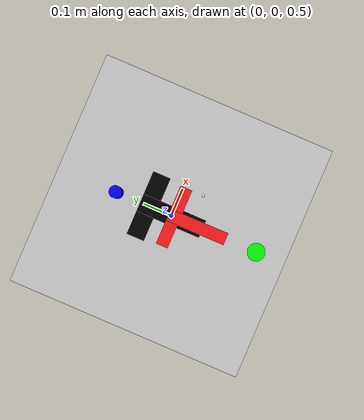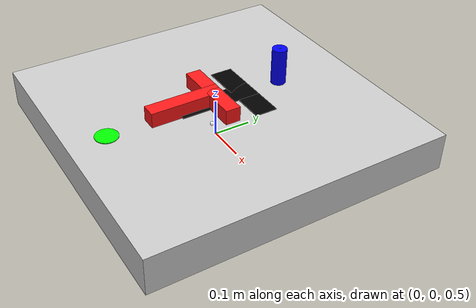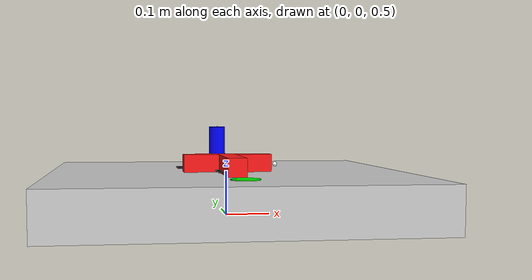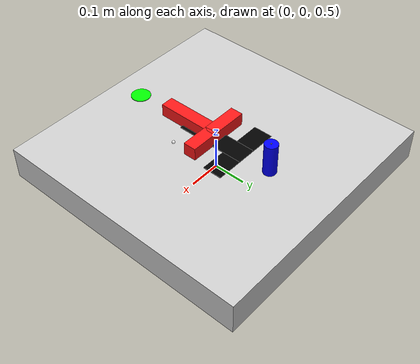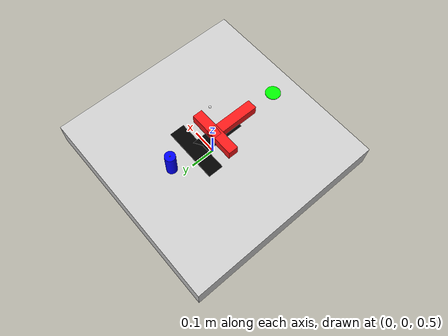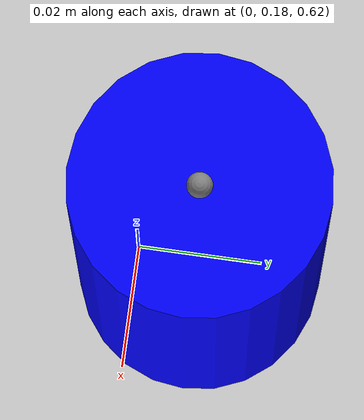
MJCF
<?xml version="1.0" ?>
<mujoco>
  <compiler angle="radian" autolimits="true"/>
  <visual>
    <headlight diffuse="0.6 0.6 0.6" ambient="0.3 0.3 0.3" specular="0 0 0"/>
    <rgba haze="0.15 0.25 0.35 1"/>
    <global azimuth="150" elevation="-20" offwidth="1280" offheight="1024"/>
  </visual>
  <asset>
    <texture type="skybox" builtin="gradient" rgb1="0.9 0.7 0.9" rgb2="0.94 0.97 0.97" width="512" height="3072"/>
    <texture type="2d" name="groundplane" builtin="checker" mark="edge" rgb1="0.2 0.3 0.4" rgb2="0.1 0.2 0.3" markrgb="0.8 0.8 0.8" width="300" height="300"/>
    <material name="groundplane" texture="groundplane" texuniform="true" texrepeat="5 5" reflectance="0.2"/>
    <material name="concrete-slab-concrete" rgba="0.8 0.8 0.8 1" shininess="0.5"/>
    <material name="concrete-slab-imprint" rgba="0 0 0 1" shininess="0.1"/>
    <material name="concrete-slab-target" rgba="0 1 0 1" shininess="0.1"/>
    <material name="t-shape-mat" rgba="1.0 0.1 0.1 1" shininess="0.5"/>
    <material name="cylinder-mat" rgba="0 0 1 1" shininess="0.1"/>
  </asset>
  <worldbody>
    <light name="key" pos="1 0.69 1.15" dir="-1 -0.5 -0.5" cutoff="45" diffuse="0.3 0.3 0.3" directional="true"/>
    <light name="fill" pos="0.8 -0.51 1.05" dir="-0.8 0.5 -0.6" cutoff="60" diffuse="0.18 0.18 0.18" directional="true"/>
    <light name="back" pos="-0.8 0.19 1.85" dir="-1 0 1" cutoff="50" diffuse="0.5 0.5 0.5" directional="true"/>
    <body name="concrete-slab" pos="0 0 0.6">
      <geom name="concrete-slab-concrete" type="box" group="1" material="concrete-slab-concrete" size="0.4 0.4 0.05" pos="0 0 -0.05" friction="50.0 0.005 0.0001"/>
      <!-- T-shaped imprint (vertical bar) -->
      <geom name="concrete-slab-t-vert" type="box" group="1" material="concrete-slab-imprint" size="0.03 0.11 0.001" pos="0 0 0.005" contype="0" conaffinity="0" friction="5.0 0.005 0.0001"/>
      <!-- T-shaped imprint (horizontal bar) -->
      <geom name="concrete-slab-t-horiz" type="box" group="1" material="concrete-slab-imprint" size="0.11 0.03 0.001" pos="0 0.08 0.005" contype="0" conaffinity="0" friction="5.0 0.005 0.0001"/>
      <geom name="concrete-slab-target" type="cylinder" group="1" material="concrete-slab-target" size="0.03 0.001" pos="0 -0.3 0.005" contype="0" conaffinity="0" friction="5.0 0.005 0.0001"/>
    </body>
    <body name="t-shape" pos="0 -0.09 0.6">
      <!-- Vertical bar of T -->
      <geom name="t-shape-vert" type="box" group="2" material="t-shape-mat" contype="1" conaffinity="1" size="0.02 0.10 0.02" pos="0 0 0.02" friction="50.0 0.005 0.0001" solref="0.005 0.01" solimp="0.95 0.99 0.001"/>
      <!-- Horizontal bar of T -->
      <geom name="t-shape-horiz" type="box" group="2" material="t-shape-mat" contype="1" conaffinity="1" size="0.10 0.02 0.02" pos="0 0.08 0.02" friction="50.0 0.005 0.0001" solref="0.005 0.01" solimp="0.95 0.99 0.001"/>
      <joint name="t-shape-joint-slide_x" type="slide" axis="1 0 0" damping="10.0"/>
      <joint name="t-shape-joint-slide_y" type="slide" axis="0 1 0" damping="10.0"/>
      <joint name="t-shape-joint-hinge_z" type="hinge" axis="0 0 1" damping="0.5"/>
      <inertial pos="0 0.055 0.02" mass="1.0" diaginertia="0.0075 0.0074 0.0001"/>
      <site name="tee" pos="0.10 0.02 0.02" size="0.005" rgba="1 1 1 1"/>
    </body>
    <camera name="top" pos="-0.03300000000000003 0 0.925" xyaxes="0 -1 0 1 0 0" fovy="0.8" orthographic="true"/>
    <camera name="left_l" pos="0.06699999999999995 0.46 0.625" fovy="77.55214222201174" xyaxes="-1.0 0.0 0.0 0.0 -0.3987261114144499 0.917070056253235"/>
    <camera name="left" pos="-0.133 0.46 0.625" fovy="77.55214222201174" xyaxes="-1.0 0.0 0.0 0.0 -0.3987261114144499 0.917070056253235"/>
    <camera name="right" pos="-0.133 -0.46 0.625" fovy="77.55214222201174" xyaxes="1.0 0.0 0.0 -0.0 0.3987261114144499 0.917070056253235"/>
    <camera name="right_r" pos="0.06699999999999995 -0.46 0.625" fovy="77.55214222201174" xyaxes="1.0 0.0 0.0 -0.0 0.3987261114144499 0.917070056253235"/>
    <camera name="front" pos="-0.45000000000000007 0 0.625" fovy="77.55214222201174" xyaxes="-0.0 -1.0 0.0 0.44721359549995787 0.0 0.894427190999916"/>
    <camera name="back" pos="0.25 0 0.625" fovy="77.55214222201174" xyaxes="-0.0 1.0 0.0 -0.5547001962252289 -0.0 0.8320502943378437"/>
    <body name="cylinder" pos="0 0.19 0.65">
      <geom name="cylinder-geom" material="cylinder-mat" type="cylinder" group="2" contype="1" conaffinity="1" size="0.02 0.05" pos="0 0 0" friction="5.0 0.005 0.0001" solref="0.005 0.01" solimp="0.95 0.99 0.001"/>
      <inertial pos="0 0 0.025" mass="0.5" diaginertia="0.001 0.001 0.001"/>
      <joint name="cylinder-cylinder_x" type="slide" axis="1 0 0"/>
      <joint name="cylinder-cylinder_y" type="slide" axis="0 1 0"/>
      <site name="cylinder-site" pos="0 0 0.05" type="sphere" size="0.002"/>
    </body>
    <body mocap="true" name="cylinder-mocap" pos="0 0.19 0.66" quat="0 0 1 0">
      <site name="cylinder-mocap-site" size="0.002" type="sphere" rgba="0.13 0.3 0.2 1"/>
    </body>
  </worldbody>
  <equality>
    <weld site1="cylinder-mocap-site" site2="cylinder-site"/>
  </equality>
</mujoco>
